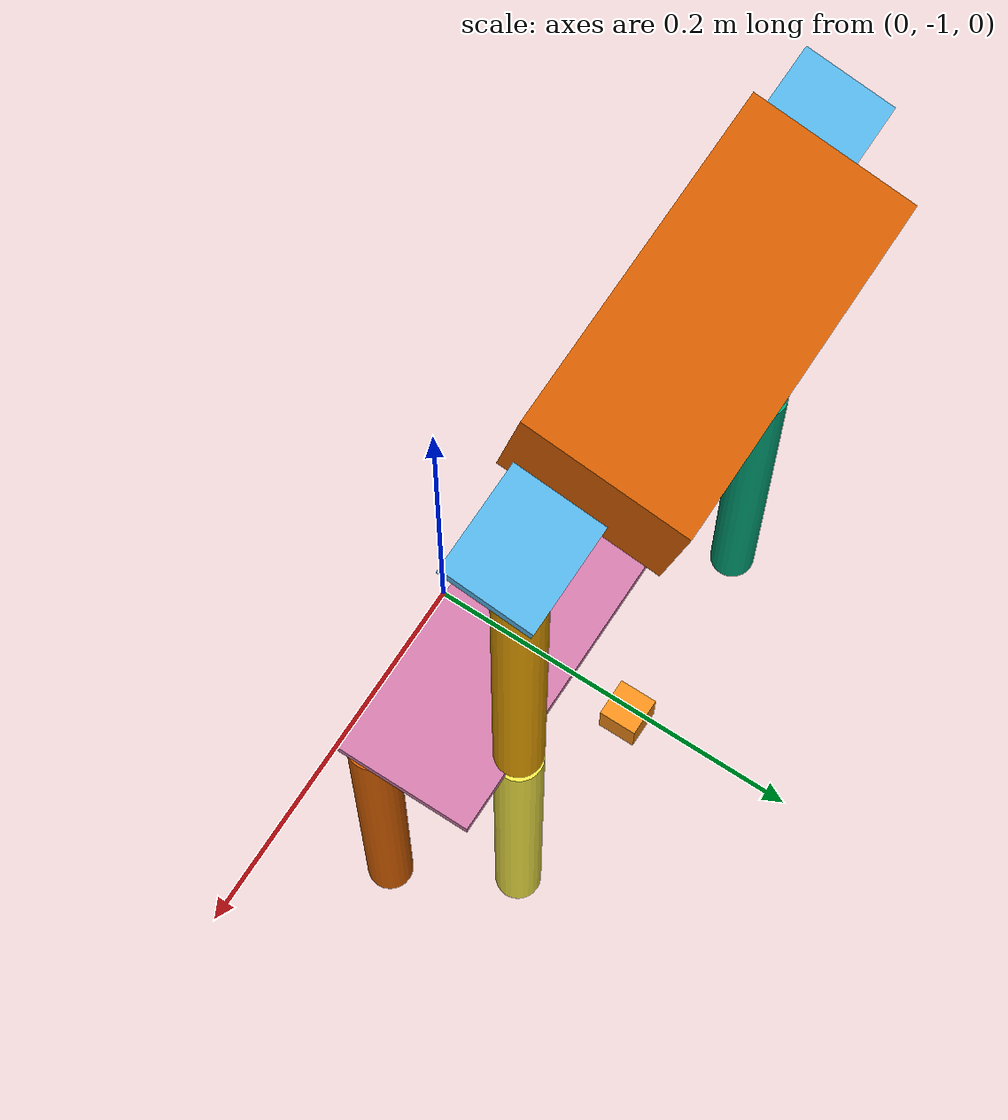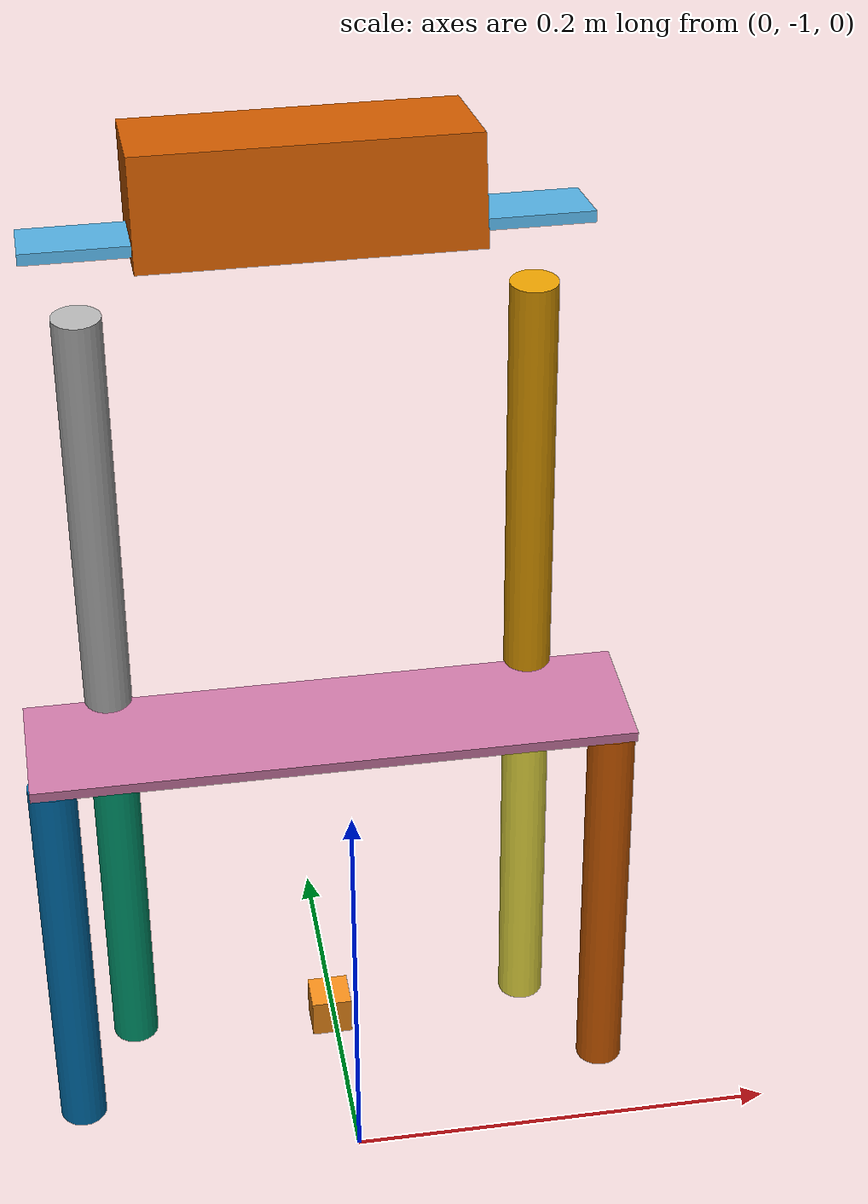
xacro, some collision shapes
<?xml version="1.0"?>
<robot name="sensor_asus_xtion_pro" xmlns:xacro="http://ros.org/wiki/xacro">
    <link name="world">
        <static>true</static>
    </link>

    <link name="xtion_base">
		<visual>
			<origin xyz="0 0 0" rpy="0 0 0" />
			<geometry>
				<box size="0.02 0.02 0.02"/>
			</geometry>
			<material name="orange"/>
		</visual>
	</link>

    <joint name="toxtion_base" type="fixed">
		<origin xyz="0 -0.89 -0.01" rpy="0 0 -1.57079632679" />
		<parent link="world" />
		<child link="xtion_base" />
	</joint>

	<xacro:include filename="$(find common_sensors)/urdf/sensors/xtion_xtended_stand.urdf.xacro" />
	<xacro:xtion_stand parent="xtion_base" tilting_angle="-0.2"/>
</robot>

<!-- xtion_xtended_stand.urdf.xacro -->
<robot name="xtion_stand" xmlns:xacro="http://ros.org/wiki/xacro">
	<xacro:include filename="$(find common_sensors)/urdf/sensors/xtion.urdf.xacro"/>

	<xacro:macro name="xtion_standoff" params="parent number x_loc y_loc z_loc height">
		<joint name="standoff_${number}_joint" type="fixed">
			<origin xyz="${x_loc} ${y_loc} ${z_loc}" rpy="0 0 0" />
			<parent link="${parent}"/>
			<child link="standoff_${number}_link" />
		</joint>

		<link name="standoff_${number}_link">
			<inertial>
				<mass value="0.001" />
				<origin xyz="0 0 0" />
				<inertia ixx="0.0001" ixy="0.0" ixz="0.0"
					iyy="0.0001" iyz="0.0"
					izz="0.0001" />
			</inertial>
			<visual>
				<origin xyz=" 0 0 0 " rpy="0 0 0" />
				<geometry>
					<cylinder length="${height}" radius="0.011113"/>
				</geometry>
			</visual>

			<collision>
				<origin xyz="0.0 0.0 0.1016" rpy="0 0 0" />
				<geometry>
					<cylinder length="${height}" radius="0.011113"/>
				</geometry>
			</collision>
		</link>
	</xacro:macro>

	<xacro:macro name="connect_plate" params="parent x_loc y_loc z_loc">
		<joint name="connect_plate_joint" type="fixed">
			<origin xyz="${x_loc} ${y_loc} ${z_loc}" rpy="0 0 0" />
			<parent link="${parent}" />
			<child link="connect_plate_link" />
		</joint>
		<link name="connect_plate_link">
			<inertial>
				<mass value="0.01" />
				<origin xyz="0 0 0" />
				<inertia ixx="0.001" ixy="0" ixz="0" iyy="0.001" iyz="0" izz="0.001" />
			</inertial>
			<visual>
				<origin xyz="0 0 0" rpy="0 0 0" />
				<geometry>
					<box size="0.066 0.28 0.005"/>
				</geometry>
			</visual>
			<collision>
				<origin xyz="0 0 0" rpy="0 0 0" />
				<geometry>
					<box size="0.066 0.28 0.005"/>
				</geometry>
			</collision>
		</link>
	</xacro:macro>

	<xacro:macro name="xtion_plate" params="parent x_loc y_loc z_loc angle">
		<joint name="xtion_plate_joint" type="fixed">
            <origin xyz="${x_loc} ${y_loc} ${z_loc}" rpy="0 ${angle} 0" />
			<parent link="${parent}" />
			<child link="xtion_plate_link" />
		</joint>
		<link name="xtion_plate_link">
			<inertial>
				<mass value="0.01" />
				<origin xyz="0 0 0" />
				<inertia ixx="0.001" ixy="0" ixz="0" iyy="0.001" iyz="0" izz="0.001" />
			</inertial>
			<visual>
				<origin xyz="0 0 0" rpy="0 0 0" />
				<geometry>
					<box size="0.04 0.245 0.005"/>
				</geometry>
			</visual>
			<collision>
				<origin xyz="0 0 0" rpy="0 0 0" />
				<geometry>
					<box size="0.04 0.245 0.005"/>
				</geometry>
			</collision>
		</link>
	</xacro:macro>

	<xacro:property name="cyl_height" value="0.203" />
	<xacro:property name="plate_thickness" value="0.006" />
	<xacro:property name="xtion_mount_z" value="0.035" />
	<!--xacro:property name="tilting_angle" value="-0.7853" /-->
	<xacro:macro name="xtion_stand" params="parent tilting_angle">
		<xacro:xtion_standoff number="1" parent="${parent}" x_loc="0" y_loc="-0.1" z_loc="${cyl_height/2}" height="${cyl_height}"/>
		<xacro:xtion_standoff number="2" parent="${parent}" x_loc="0" y_loc="0.1" z_loc="${cyl_height/2}" height="${cyl_height}"/>
		<xacro:xtion_standoff number="3" parent="${parent}" x_loc="0.055" y_loc="-0.13" z_loc="${cyl_height/2}" height="${cyl_height}"/>
		<xacro:xtion_standoff number="4" parent="${parent}" x_loc="0.055" y_loc="0.13" z_loc="${cyl_height/2}" height="${cyl_height}"/>
		<xacro:connect_plate parent="${parent}" x_loc="0.033" y_loc="0" z_loc="${cyl_height+plate_thickness/2}"/>
		<xacro:xtion_standoff number="5" parent="${parent}" x_loc="0" y_loc="-0.1" z_loc="${cyl_height*1.5+plate_thickness}" height="${cyl_height}"/>
		<xacro:xtion_standoff number="6" parent="${parent}" x_loc="0" y_loc="0.1" z_loc="${cyl_height*1.5+plate_thickness}" height="${cyl_height}"/>
        <xacro:xtion_plate parent="standoff_6_link" x_loc="0" y_loc="-0.1" z_loc="${cyl_height/2+xtion_mount_z}" angle="${tilting_angle}"/>

		<xacro:sensor_xtion parent="xtion_plate_link" camera_name="xtion">
			<origin xyz="0 0 ${xtion_height/2+plate_thickness/2}" rpy="0 0 3.14159" />
		</xacro:sensor_xtion>
	</xacro:macro>
</robot>

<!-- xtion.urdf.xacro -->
<robot name="sensor_asus_xtion_pro" xmlns:xacro="http://ros.org/wiki/xacro">
	<xacro:include filename="$(find common_sensors)/urdf/sensors/xtion_gazebo.urdf.xacro"/>

	<!-- Xacro properties -->
	<xacro:property name="M_PI" value="3.1415926535897931" />
	<xacro:property name="M_SCALE" value="0.001"/>
	<xacro:property name="xtion_depth_frame_py" value="0.0499" /> <!-- previously -0.022 -->
	<xacro:property name="xtion_rgb_frame_py" value="0.022" />
	<xacro:property name="xtion_camera_link_py" value="0" />

	<!--
	To use from files including this one. This is just a constant which contains the height of the xtion.
        -->
	<xacro:property name="xtion_height" value="0.026" />

	<xacro:macro name="sensor_xtion" params="parent camera_name *origin">

		<joint name="${camera_name}_base_joint" type="fixed">
			<xacro:insert_block name="origin" />
			<parent link="${parent}"/>
			<child link="${camera_name}_base_frame" />
		</joint>
		<link name="${camera_name}_base_frame">
			<inertial>
			<mass value="0.001" />
			<origin xyz="0 0 0" />
			<inertia ixx="0.0001" ixy="0.0" ixz="0.0"
				iyy="0.0001" iyz="0.0"
				izz="0.0001" />
			</inertial>
		</link>

		<joint name="${camera_name}_rgb_joint" type="fixed">
			<origin xyz="0 ${xtion_rgb_frame_py} 0" rpy="0 0 0" />
			<parent link="${camera_name}_base_frame"/>
			<child link="${camera_name}_rgb_frame" />
		</joint>

		<link name="${camera_name}_rgb_frame">
			<inertial>
			<mass value="0.001" />
			<origin xyz="0 0 0" />
			<inertia ixx="0.0001" ixy="0.0" ixz="0.0"
				iyy="0.0001" iyz="0.0"
				izz="0.0001" />
			</inertial>
		</link>

		<joint name="${camera_name}_rgb_optical_joint" type="fixed">
			<origin xyz="0 0 0" rpy="${-M_PI/2} 0 ${-M_PI/2}" />
			<parent link="${camera_name}_rgb_frame" />
			<child link="${camera_name}_rgb_optical_frame" />
		</joint>

		<link name="${camera_name}_rgb_optical_frame">
			<inertial>
			<mass value="0.001" />
			<origin xyz="0 0 0" />
			<inertia ixx="0.0001" ixy="0.0" ixz="0.0"
				iyy="0.0001" iyz="0.0"
				izz="0.0001" />
			</inertial>
		</link>

		<joint name="${camera_name}_joint" type="fixed">
			<origin xyz="0 ${xtion_camera_link_py} 0"
					rpy="0 0 0"/>
			<parent link="${camera_name}_base_frame"/>
			<child link="${camera_name}_link"/>
		</joint>
		<link name="${camera_name}_link">
			<visual>
				<origin xyz="0.01 0 0" rpy="${-M_PI/2} -${M_PI} ${-M_PI/2}"/>
				<geometry>
					<mesh filename="package://common_sensors/meshes/sensors/asus_xtion_pro_live.dae" scale="${M_SCALE} ${M_SCALE} ${M_SCALE}"/>
				</geometry>
			</visual>
			<collision>
				<origin xyz="0.01 0 0" rpy="${-M_PI/2} -${M_PI} ${-M_PI/2}"/>
				<geometry>
					<box size="0.15 0.05 0.07"/>
				</geometry>
			</collision>
			<inertial>
			<mass value="0.01" />
			<origin xyz="0 0 0" />
			<inertia ixx="0.001" ixy="0.0" ixz="0.0"
				iyy="0.001" iyz="0.0"
				izz="0.001" />
			</inertial>
		</link>

		<joint name="${camera_name}_depth_joint" type="fixed">
			<origin xyz="0 ${xtion_depth_frame_py} 0" rpy="0 0 0" />
			<parent link="${camera_name}_base_frame" />
			<child link="${camera_name}_depth_frame" />
		</joint>

		<link name="${camera_name}_depth_frame">
			<inertial>
			<mass value="0.01" />
			<origin xyz="0 0 0" />
			<inertia ixx="0.001" ixy="0.0" ixz="0.0"
				iyy="0.001" iyz="0.0"
				izz="0.001" />
			</inertial>
		</link>

		<joint name="${camera_name}_depth_optical_joint" type="fixed">
			<origin xyz="0 0 0" rpy="${-M_PI/2} 0 ${-M_PI/2}" />
			<parent link="${camera_name}_depth_frame" />
			<child link="${camera_name}_depth_optical_frame" />
		</joint>

		<link name="${camera_name}_depth_optical_frame">
			<inertial>
			<mass value="0.001" />
			<origin xyz="0 0 0" />
			<inertia ixx="0.0001" ixy="0.0" ixz="0.0"
				iyy="0.0001" iyz="0.0"
				izz="0.0001" />
			</inertial>
		</link>

		<!-- RGBD sensor for simulation, same as Kinect -->
		<xacro:xtion_sim_3dsensor camera_name="${camera_name}"/>

	</xacro:macro>
</robot>
